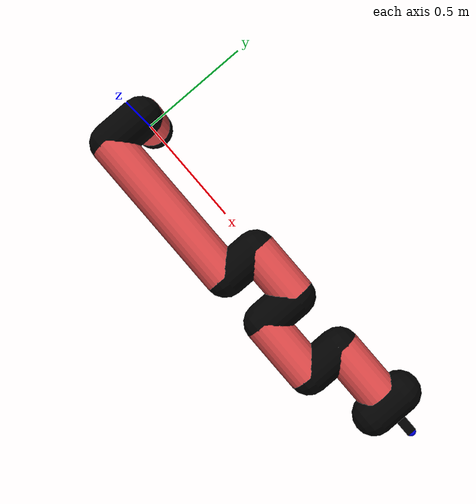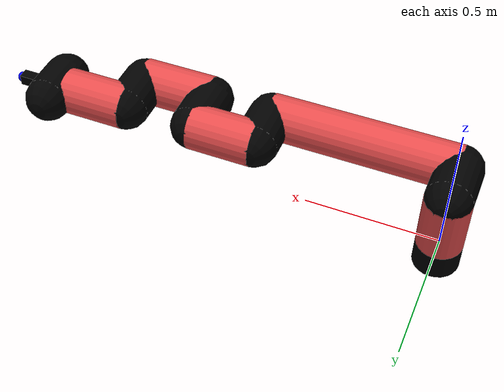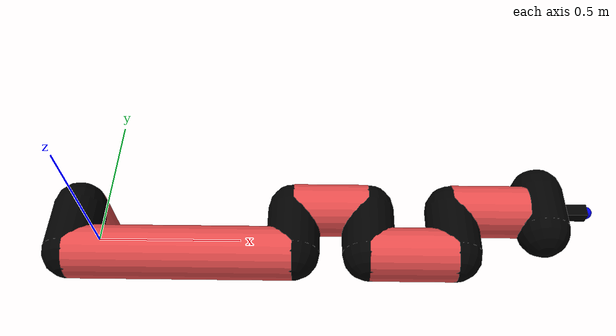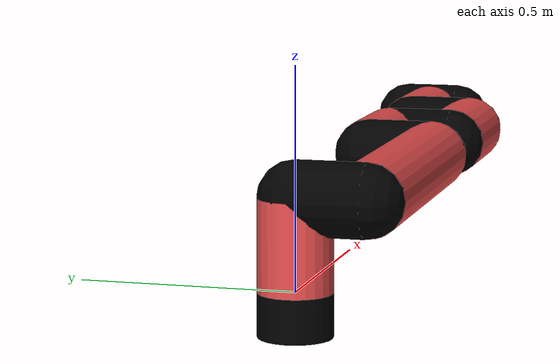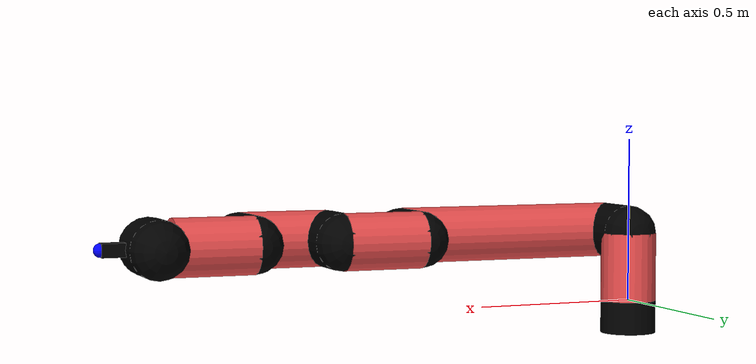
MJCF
<mujoco model="manipulator">
		<compiler angle="degree" coordinate="local" inertiafromgeom="auto" meshdir="meshes/"/>
		<option gravity="0 0 0" integrator="RK4" iterations="30" timestep="0.01"/>

		<default>
		<joint armature="1" limited="true" stiffness="10" damping="15" frictionloss="5.0"/>
		<geom conaffinity="1" condim="3" contype="1" friction=".5 .1 .1" margin="0.002"/>
		<motor ctrllimited="true"/>
		<position ctrllimited="true"/>
		</default>

		<asset>
		<texture builtin="gradient" height="100" rgb1="1.0 1.0 1.0" rgb2="1.0 1.0 1.0" type="skybox" width="100"/>
		<texture builtin="flat" height="32" name="arm_tex" rgb1="0.9 0.3 0.3" type="2d" width="32"/>
		<texture builtin="flat" height="32" name="gripper_tex" rgb1="0.0 0.0 0.0" type="cube" width="32"/>

		<material name="arm_mat" shininess="0.1" specular="0.1" texture="arm_tex"/>
		<material name="gripper_mat" shininess="1" specular="1" texture="gripper_tex"/>
		</asset>

		<worldbody>
		<light cutoff="45" diffuse=".8 .8 .8" dir="0 0.16 -1" directional="false" name="light" pos="0 -2.0 8.0" specular="0.3 0.3 0.3"/>

		<body name="base_link" pos="0 0 -0.1">
		<geom fromto="0 0 0 0 0 0.1" material="arm_mat" name="base_link" rgba="0.0 0.0 0.0 1" size="0.085" type="cylinder"/>
		</body>

		<body name="l1" pos="0 0 0">
<geom fromto="0 0 0 0 0 0.21" material="arm_mat" name="l1" rgba="0.9 0.3 0.3 1" size="0.085" type="cylinder"/>
<geom fromto="0 0 0.21 0 -0.16 0.21" material="arm_mat" name="l1_ex" rgba="0.0 0.0 0.0 1" size="0.085" type="capsule"/>
<joint axis="0 0 1" name="j1" pos="0 0 0" range="-90 90" damping="39.24" frictionloss="6.32"/>

<body name="l2" pos="0 -0.16 0.21">
<geom fromto="0 0 0 0.7 0 0" material="arm_mat" name="l2" rgba="0.9 0.3 0.3 1" size="0.085" type="cylinder"/>
<geom fromto="0.7 0 0 0.7 0.16 0" material="arm_mat" name="l2_ex" rgba="0.0 0.0 0.0 1" size="0.085" type="capsule"/>
<joint axis="0.0 1.0 0.0" name="j2" pos="0 0 0" range="-90 60" damping="28.1" frictionloss="6.92"/>

<body name="l3" pos="0.7 0.16 0">
<geom fromto="0 0 0 0.24 0 0" material="arm_mat" name="l3" rgba="0.9 0.3 0.3 1" size="0.085" type="cylinder"/>
<geom fromto="0.24 0 0 0.24 -0.16 0" material="arm_mat" name="l3_ex" rgba="0.0 0.0 0.0 1" size="0.085" type="capsule"/>
<joint axis="0.0 1.0 0.0" name="j3" pos="0 0 0" range="-30 60" damping="35.86" frictionloss="6.82"/>

<body name="l4" pos="0.24 -0.16 0">
<geom fromto="0 0 0 0.27 0 0" material="arm_mat" name="l4" rgba="0.9 0.3 0.3 1" size="0.085" type="cylinder"/>
<geom fromto="0.27 0 0 0.27 0.16 0" material="arm_mat" name="l4_ex" rgba="0.0 0.0 0.0 1" size="0.085" type="capsule"/>
<joint axis="0.0 1.0 0.0" name="j4" pos="0 0 0" range="-30 60" damping="41.29" frictionloss="13.27"/>

<body name="l5" pos="0.27 0.16 0">
<geom fromto="0 0 0 0.24 0 0" material="arm_mat" name="l5" rgba="0.9 0.3 0.3 1" size="0.085" type="cylinder"/>
<joint axis="0.0 1.0 0.0" name="j5" pos="0 0 0" range="-30 60" damping="29.45" frictionloss="6.8"/>

<body name="gripper" pos="0.24 0 0">
<geom fromto="0.05 -0.07 0 0.05 0.07 0" material="gripper_mat" name="gripper" rgba="0.0 0.0 0.0 1" size="0.085" type="capsule"/><joint axis="1 0 0" name="j6" pos="0 0 0" range="-90 90" damping="15" frictionloss="5.0"/><body name="finger" pos="0.1 0 0">
<geom fromto="0 0.0 0 0.1 0.0 0" material="gripper_mat" name="finger" rgba="0.0 0.0 0.0 1" size="0.020 0.06 0.06" type="box"/>
</body>
<site name="current" pos="0.2 0. 0.0" rgba="0. 0. 1.0 1" size="0.02" type="sphere"/>
</body>
</body>
</body>
</body>
</body>
</body>
</worldbody>
<actuator>
<motor ctrllimited="true" ctrlrange="-1.0 1.0" joint="j1" gear="63.34"/>
<motor ctrllimited="true" ctrlrange="-1.0 1.0" joint="j2" gear="58.71"/>
<motor ctrllimited="true" ctrlrange="-1.0 1.0" joint="j3" gear="106.29"/>
<motor ctrllimited="true" ctrlrange="-1.0 1.0" joint="j4" gear="66.82"/>
<motor ctrllimited="true" ctrlrange="-1.0 1.0" joint="j5" gear="89.73"/>
<motor ctrllimited="true" ctrlrange="-1.0 1.0" joint="j6" gear="80"/>
</actuator>
</mujoco>
